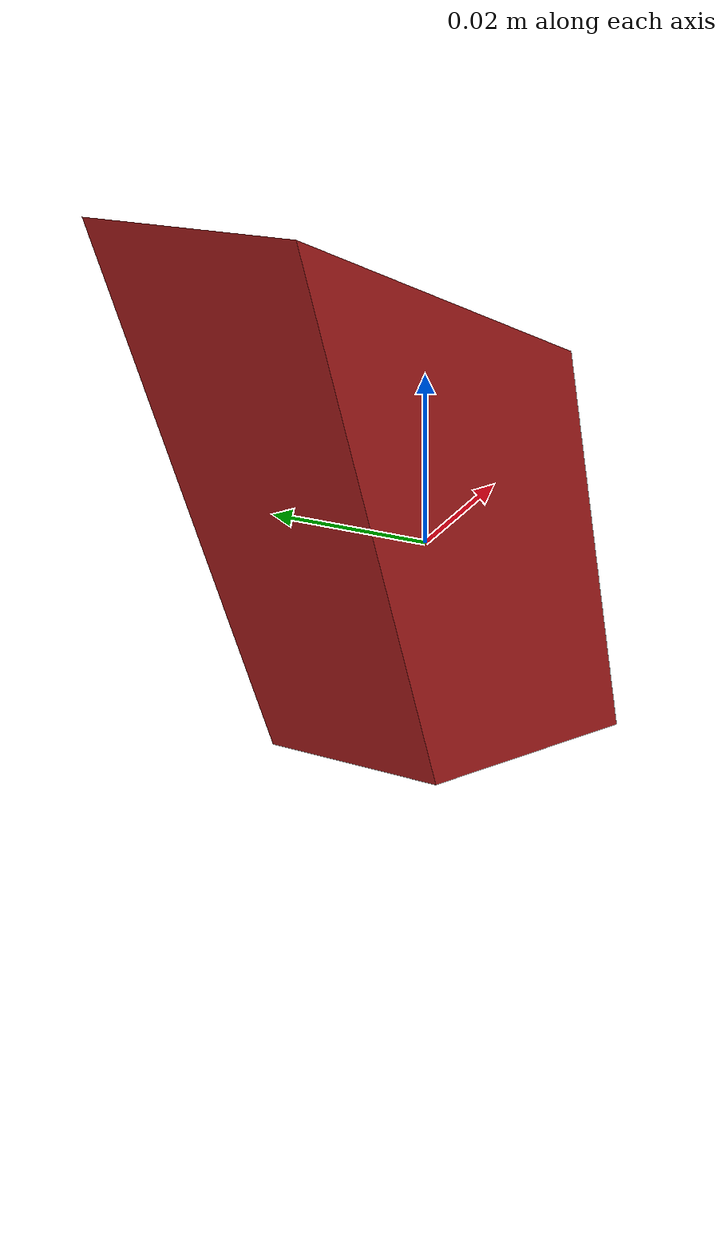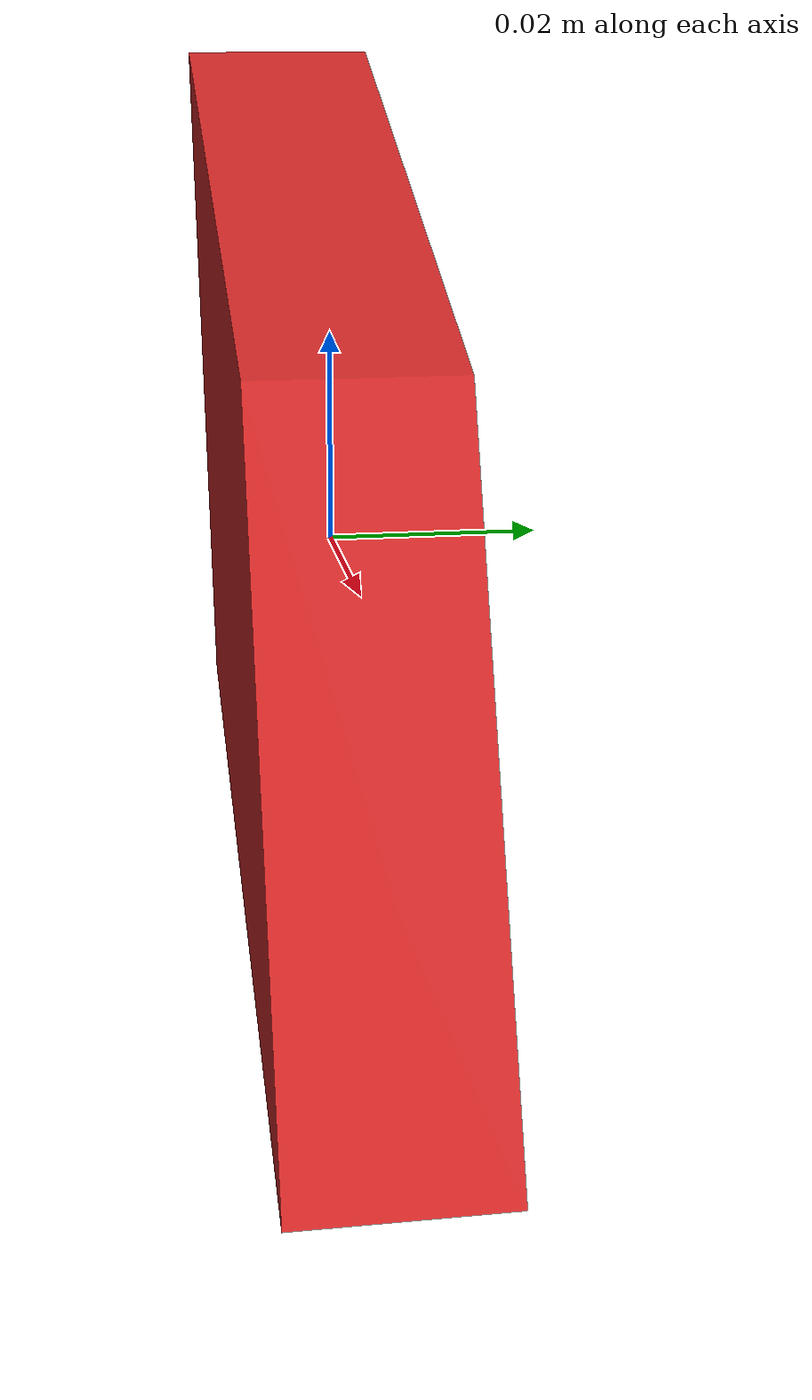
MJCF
<mujoco model="parallelogram">
  <default>
    <default class="visual">
      <geom group="2" type="mesh" contype="0" conaffinity="0"/>
    </default>
    <default class="collision">
      <geom group="3" type="mesh"/>
    </default>
  </default>
  <asset>
    <texture type="2d" name="texture" file="texture.png"/>
    <material name="Red.004" texture="texture" specular="0.0" shininess="0.25"/>
    <mesh file="parallelogram.obj"/>
  </asset>
  <worldbody>
    <body name="parallelogram">
      <freejoint/>
      <geom material="Red.004" mesh="parallelogram" class="visual"/>
      <geom mesh="parallelogram" class="collision"/>
    </body>
  </worldbody>
</mujoco>
